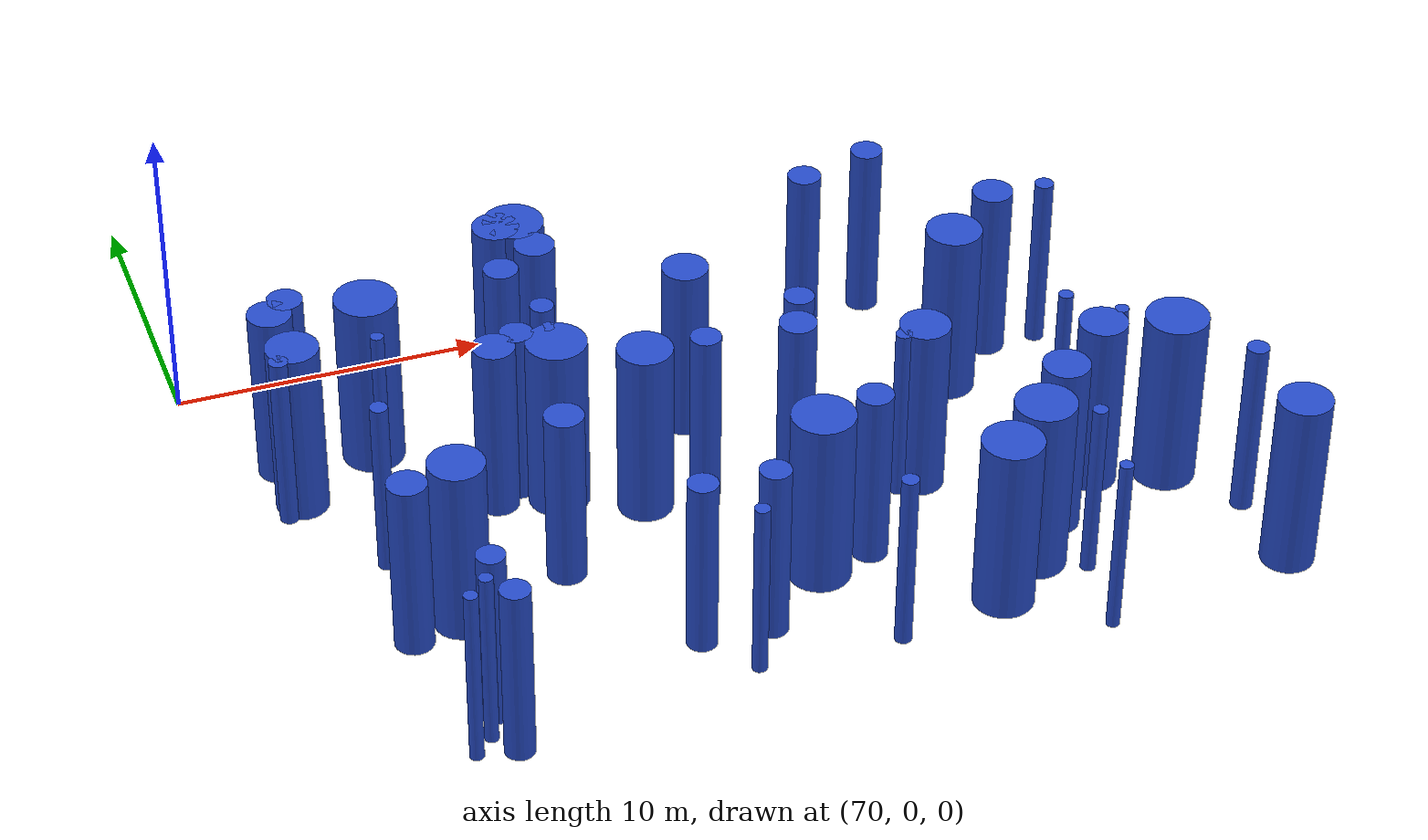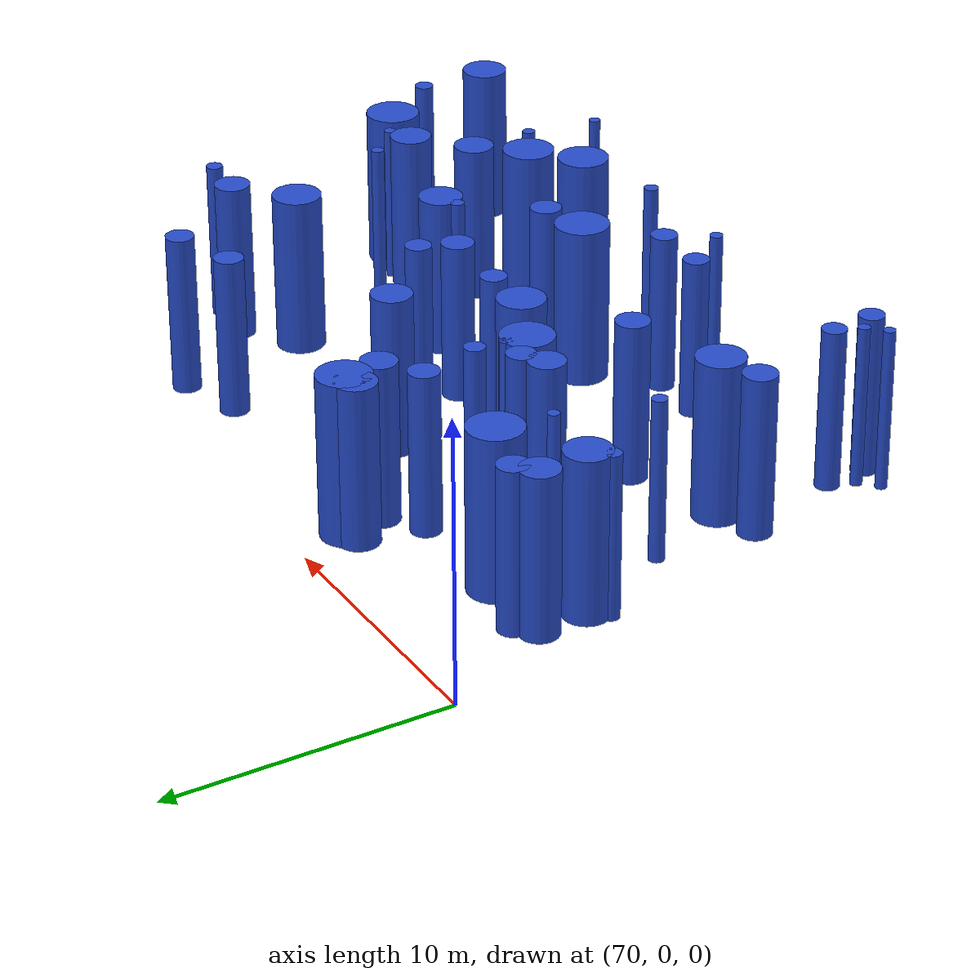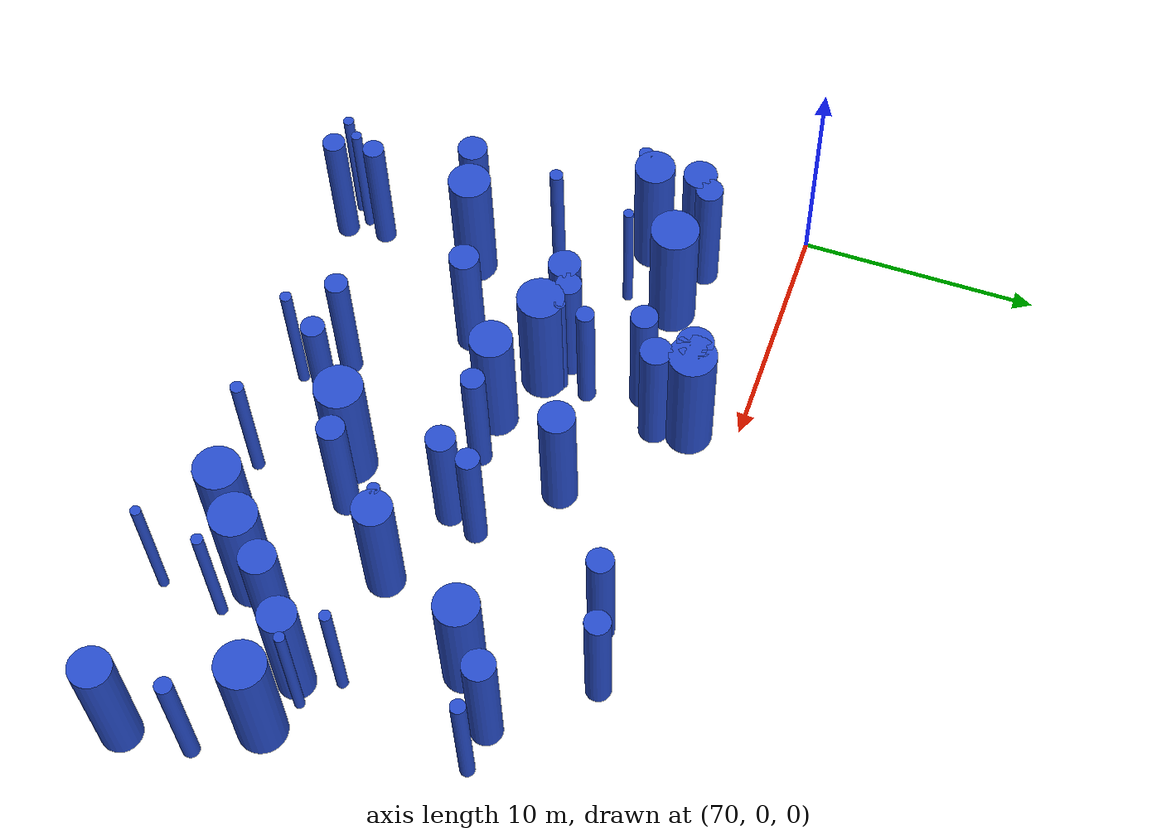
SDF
<sdf version="1.7">
 <world name="default">
  <model name="1">
   <static>1</static>
   <link name="link">
    <inertial>
     <mass>2</mass>
     <inertia><ixx>6.13726</ixx><ixy>0</ixy><ixz>0</ixz><iyy>6.13726</iyy><iyz>0</iyz><izz>0.274521</izz></inertia>
    </inertial>
    <collision name="collision">
     <geometry><cylinder><length>6</length><radius>0.523947</radius></cylinder></geometry>
     <surface><contact><collide_without_contact>1</collide_without_contact></contact></surface>
    </collision>
    <visual name="visual">
     <geometry><cylinder><length>6</length><radius>0.523947</radius></cylinder></geometry>
     <material>
      <script><uri>file://media/materials/scripts/gazebo.material</uri><name>Gazebo/Blue</name></script>
     </material>
    </visual>
    <gravity>0</gravity>
   </link>
   <pose>79.0825 -7.66138 3 0 -0 0</pose>
  </model>
  <model name="10">
   <static>1</static>
   <link name="link">
    <inertial>
     <mass>2</mass>
     <inertia><ixx>6.17693</ixx><ixy>0</ixy><ixz>0</ixz><iyy>6.17693</iyy><iyz>0</iyz><izz>0.353861</izz></inertia>
    </inertial>
    <collision name="collision">
     <geometry><cylinder><length>6</length><radius>0.594862</radius></cylinder></geometry>
     <surface><contact><collide_without_contact>1</collide_without_contact></contact></surface>
    </collision>
    <visual name="visual">
     <geometry><cylinder><length>6</length><radius>0.594862</radius></cylinder></geometry>
     <material>
      <script><uri>file://media/materials/scripts/gazebo.material</uri><name>Gazebo/Blue</name></script>
     </material>
    </visual>
    <gravity>0</gravity>
   </link>
   <pose>87.3229 -9.93889 3 0 -0 0</pose>
  </model>
  <model name="12">
   <static>1</static>
   <link name="link">
    <inertial>
     <mass>2</mass>
     <inertia><ixx>6.47437</ixx><ixy>0</ixy><ixz>0</ixz><iyy>6.47437</iyy><iyz>0</iyz><izz>0.948739</izz></inertia>
    </inertial>
    <collision name="collision">
     <geometry><cylinder><length>6</length><radius>0.974032</radius></cylinder></geometry>
     <surface><contact><collide_without_contact>1</collide_without_contact></contact></surface>
    </collision>
    <visual name="visual">
     <geometry><cylinder><length>6</length><radius>0.974032</radius></cylinder></geometry>
     <material>
      <script><uri>file://media/materials/scripts/gazebo.material</uri><name>Gazebo/Blue</name></script>
     </material>
    </visual>
    <gravity>0</gravity>
   </link>
   <pose>80.7273 -1.97986 3 0 -0 0</pose>
  </model>
  <model name="26">
   <static>1</static>
   <link name="link">
    <inertial>
     <mass>2</mass>
     <inertia><ixx>6.07083</ixx><ixy>0</ixy><ixz>0</ixz><iyy>6.07083</iyy><iyz>0</iyz><izz>0.141653</izz></inertia>
    </inertial>
    <collision name="collision">
     <geometry><cylinder><length>6</length><radius>0.376368</radius></cylinder></geometry>
     <surface><contact><collide_without_contact>1</collide_without_contact></contact></surface>
    </collision>
    <visual name="visual">
     <geometry><cylinder><length>6</length><radius>0.376368</radius></cylinder></geometry>
     <material>
      <script><uri>file://media/materials/scripts/gazebo.material</uri><name>Gazebo/Blue</name></script>
     </material>
    </visual>
    <gravity>0</gravity>
   </link>
   <pose>80.2366 -6.5725 3 0 -0 0</pose>
  </model>
  <model name="31">
   <static>1</static>
   <link name="link">
    <inertial>
     <mass>2</mass>
     <inertia>
      <ixx>6.02361</ixx>
      <ixy>0</ixy>
      <ixz>0</ixz>
      <iyy>6.02361</iyy>
      <iyz>0</iyz>
      <izz>0.0472233</izz>
     </inertia>
    </inertial>
    <collision name="collision">
     <geometry><cylinder><length>6</length><radius>0.217309</radius></cylinder></geometry>
     <surface><contact><collide_without_contact>1</collide_without_contact></contact></surface>
    </collision>
    <visual name="visual">
     <geometry><cylinder><length>6</length><radius>0.217309</radius></cylinder></geometry>
     <material>
      <script><uri>file://media/materials/scripts/gazebo.material</uri><name>Gazebo/Blue</name></script>
     </material>
    </visual>
    <gravity>0</gravity>
   </link>
   <pose>96.9028 -12.4642 3 0 -0 0</pose>
  </model>
  <model name="38">
   <static>1</static>
   <link name="link">
    <inertial>
     <mass>2</mass>
     <inertia><ixx>6.27451</ixx><ixy>0</ixy><ixz>0</ixz><iyy>6.27451</iyy><iyz>0</iyz><izz>0.549024</izz></inertia>
    </inertial>
    <collision name="collision">
     <geometry><cylinder><length>6</length><radius>0.740961</radius></cylinder></geometry>
     <surface><contact><collide_without_contact>1</collide_without_contact></contact></surface>
    </collision>
    <visual name="visual">
     <geometry><cylinder><length>6</length><radius>0.740961</radius></cylinder></geometry>
     <material>
      <script><uri>file://media/materials/scripts/gazebo.material</uri><name>Gazebo/Blue</name></script>
     </material>
    </visual>
    <gravity>0</gravity>
   </link>
   <pose>85.0306 -6.07382 3 0 -0 0</pose>
  </model>
  <model name="41">
   <static>1</static>
   <link name="link">
    <inertial>
     <mass>2</mass>
     <inertia><ixx>6.11796</ixx><ixy>0</ixy><ixz>0</ixz><iyy>6.11796</iyy><iyz>0</iyz><izz>0.235925</izz></inertia>
    </inertial>
    <collision name="collision">
     <geometry><cylinder><length>6</length><radius>0.485721</radius></cylinder></geometry>
     <surface><contact><collide_without_contact>1</collide_without_contact></contact></surface>
    </collision>
    <visual name="visual">
     <geometry><cylinder><length>6</length><radius>0.485721</radius></cylinder></geometry>
     <material>
      <script><uri>file://media/materials/scripts/gazebo.material</uri><name>Gazebo/Blue</name></script>
     </material>
    </visual>
    <gravity>0</gravity>
   </link>
   <pose>84.4381 -9.72074 3 0 -0 0</pose>
  </model>
  <model name="42">
   <static>1</static>
   <link name="link">
    <inertial>
     <mass>2</mass>
     <inertia>
      <ixx>6.02204</ixx>
      <ixy>0</ixy>
      <ixz>0</ixz>
      <iyy>6.02204</iyy>
      <iyz>0</iyz>
      <izz>0.0440786</izz>
     </inertia>
    </inertial>
    <collision name="collision">
     <geometry><cylinder><length>6</length><radius>0.209949</radius></cylinder></geometry>
     <surface><contact><collide_without_contact>1</collide_without_contact></contact></surface>
    </collision>
    <visual name="visual">
     <geometry><cylinder><length>6</length><radius>0.209949</radius></cylinder></geometry>
     <material>
      <script><uri>file://media/materials/scripts/gazebo.material</uri><name>Gazebo/Blue</name></script>
     </material>
    </visual>
    <gravity>0</gravity>
   </link>
   <pose>75.056 -6.49444 3 0 -0 0</pose>
  </model>
  <model name="45">
   <static>1</static>
   <link name="link">
    <inertial>
     <mass>2</mass>
     <inertia><ixx>6.24281</ixx><ixy>0</ixy><ixz>0</ixz><iyy>6.24281</iyy><iyz>0</iyz><izz>0.485616</izz></inertia>
    </inertial>
    <collision name="collision">
     <geometry><cylinder><length>6</length><radius>0.696861</radius></cylinder></geometry>
     <surface><contact><collide_without_contact>1</collide_without_contact></contact></surface>
    </collision>
    <visual name="visual">
     <geometry><cylinder><length>6</length><radius>0.696861</radius></cylinder></geometry>
     <material>
      <script><uri>file://media/materials/scripts/gazebo.material</uri><name>Gazebo/Blue</name></script>
     </material>
    </visual>
    <gravity>0</gravity>
   </link>
   <pose>72.2614 -4.32324 3 0 -0 0</pose>
  </model>
  <model name="61">
   <static>1</static>
   <link name="link">
    <inertial>
     <mass>2</mass>
     <inertia><ixx>6.11407</ixx><ixy>0</ixy><ixz>0</ixz><iyy>6.11407</iyy><iyz>0</iyz><izz>0.228142</izz></inertia>
    </inertial>
    <collision name="collision">
     <geometry><cylinder><length>6</length><radius>0.477642</radius></cylinder></geometry>
     <surface><contact><collide_without_contact>1</collide_without_contact></contact></surface>
    </collision>
    <visual name="visual">
     <geometry><cylinder><length>6</length><radius>0.477642</radius></cylinder></geometry>
     <material>
      <script><uri>file://media/materials/scripts/gazebo.material</uri><name>Gazebo/Blue</name></script>
     </material>
    </visual>
    <gravity>0</gravity>
   </link>
   <pose>87.8311 -8.65193 3 0 -0 0</pose>
  </model>
  <model name="63">
   <static>1</static>
   <link name="link">
    <inertial>
     <mass>2</mass>
     <inertia><ixx>6.45196</ixx><ixy>0</ixy><ixz>0</ixz><iyy>6.45196</iyy><iyz>0</iyz><izz>0.903928</izz></inertia>
    </inertial>
    <collision name="collision">
     <geometry><cylinder><length>6</length><radius>0.950751</radius></cylinder></geometry>
     <surface><contact><collide_without_contact>1</collide_without_contact></contact></surface>
    </collision>
    <visual name="visual">
     <geometry><cylinder><length>6</length><radius>0.950751</radius></cylinder></geometry>
     <material>
      <script><uri>file://media/materials/scripts/gazebo.material</uri><name>Gazebo/Blue</name></script>
     </material>
    </visual>
    <gravity>0</gravity>
   </link>
   <pose>91.2058 -17.4489 3 0 -0 0</pose>
  </model>
  <model name="67">
   <static>1</static>
   <link name="link">
    <inertial>
     <mass>2</mass>
     <inertia><ixx>6.34586</ixx><ixy>0</ixy><ixz>0</ixz><iyy>6.34586</iyy><iyz>0</iyz><izz>0.691722</izz></inertia>
    </inertial>
    <collision name="collision">
     <geometry><cylinder><length>6</length><radius>0.831699</radius></cylinder></geometry>
     <surface><contact><collide_without_contact>1</collide_without_contact></contact></surface>
    </collision>
    <visual name="visual">
     <geometry><cylinder><length>6</length><radius>0.831699</radius></cylinder></geometry>
     <material>
      <script><uri>file://media/materials/scripts/gazebo.material</uri><name>Gazebo/Blue</name></script>
     </material>
    </visual>
    <gravity>0</gravity>
   </link>
   <pose>72.4865 -6.20072 3 0 -0 0</pose>
  </model>
  <model name="83">
   <static>1</static>
   <link name="link">
    <inertial>
     <mass>2</mass>
     <inertia><ixx>6.0273</ixx><ixy>0</ixy><ixz>0</ixz><iyy>6.0273</iyy><iyz>0</iyz><izz>0.0546069</izz></inertia>
    </inertial>
    <collision name="collision">
     <geometry><cylinder><length>6</length><radius>0.233681</radius></cylinder></geometry>
     <surface><contact><collide_without_contact>1</collide_without_contact></contact></surface>
    </collision>
    <visual name="visual">
     <geometry><cylinder><length>6</length><radius>0.233681</radius></cylinder></geometry>
     <material>
      <script><uri>file://media/materials/scripts/gazebo.material</uri><name>Gazebo/Blue</name></script>
     </material>
    </visual>
    <gravity>0</gravity>
   </link>
   <pose>95.5868 -11.2314 3 0 -0 0</pose>
  </model>
  <model name="85">
   <static>1</static>
   <link name="link">
    <inertial>
     <mass>2</mass>
     <inertia><ixx>6.49099</ixx><ixy>0</ixy><ixz>0</ixz><iyy>6.49099</iyy><iyz>0</iyz><izz>0.981986</izz></inertia>
    </inertial>
    <collision name="collision">
     <geometry><cylinder><length>6</length><radius>0.990952</radius></cylinder></geometry>
     <surface><contact><collide_without_contact>1</collide_without_contact></contact></surface>
    </collision>
    <visual name="visual">
     <geometry><cylinder><length>6</length><radius>0.990952</radius></cylinder></geometry>
     <material>
      <script><uri>file://media/materials/scripts/gazebo.material</uri><name>Gazebo/Blue</name></script>
     </material>
    </visual>
    <gravity>0</gravity>
   </link>
   <pose>98.3417 -13.3671 3 0 -0 0</pose>
  </model>
  <model name="92">
   <static>1</static>
   <link name="link">
    <inertial>
     <mass>2</mass>
     <inertia>
      <ixx>6.03584</ixx>
      <ixy>0</ixy>
      <ixz>0</ixz>
      <iyy>6.03584</iyy>
      <iyz>0</iyz>
      <izz>0.0716711</izz>
     </inertia>
    </inertial>
    <collision name="collision">
     <geometry><cylinder><length>6</length><radius>0.267715</radius></cylinder></geometry>
     <surface><contact><collide_without_contact>1</collide_without_contact></contact></surface>
    </collision>
    <visual name="visual">
     <geometry><cylinder><length>6</length><radius>0.267715</radius></cylinder></geometry>
     <material>
      <script><uri>file://media/materials/scripts/gazebo.material</uri><name>Gazebo/Blue</name></script>
     </material>
    </visual>
    <gravity>0</gravity>
   </link>
   <pose>87.692 -18.1768 3 0 -0 0</pose>
  </model>
  <model name="97">
   <static>1</static>
   <link name="link">
    <inertial>
     <mass>2</mass>
     <inertia><ixx>6.31806</ixx><ixy>0</ixy><ixz>0</ixz><iyy>6.31806</iyy><iyz>0</iyz><izz>0.636122</izz></inertia>
    </inertial>
    <collision name="collision">
     <geometry><cylinder><length>6</length><radius>0.797572</radius></cylinder></geometry>
     <surface><contact><collide_without_contact>1</collide_without_contact></contact></surface>
    </collision>
    <visual name="visual">
     <geometry><cylinder><length>6</length><radius>0.797572</radius></cylinder></geometry>
     <material>
      <script><uri>file://media/materials/scripts/gazebo.material</uri><name>Gazebo/Blue</name></script>
     </material>
    </visual>
    <gravity>0</gravity>
   </link>
   <pose>90.9308 -11.287 3 0 -0 0</pose>
  </model>
  <model name="114">
   <static>1</static>
   <link name="link">
    <inertial>
     <mass>2</mass>
     <inertia><ixx>6.18924</ixx><ixy>0</ixy><ixz>0</ixz><iyy>6.18924</iyy><iyz>0</iyz><izz>0.378478</izz></inertia>
    </inertial>
    <collision name="collision">
     <geometry><cylinder><length>6</length><radius>0.615206</radius></cylinder></geometry>
     <surface><contact><collide_without_contact>1</collide_without_contact></contact></surface>
    </collision>
    <visual name="visual">
     <geometry><cylinder><length>6</length><radius>0.615206</radius></cylinder></geometry>
     <material>
      <script><uri>file://media/materials/scripts/gazebo.material</uri><name>Gazebo/Blue</name></script>
     </material>
    </visual>
    <gravity>0</gravity>
   </link>
   <pose>79.1976 -12.0524 3 0 -0 0</pose>
  </model>
  <model name="126">
   <static>1</static>
   <link name="link">
    <inertial>
     <mass>2</mass>
     <inertia>
      <ixx>6.03287</ixx>
      <ixy>0</ixy>
      <ixz>0</ixz>
      <iyy>6.03287</iyy>
      <iyz>0</iyz>
      <izz>0.0657482</izz>
     </inertia>
    </inertial>
    <collision name="collision">
     <geometry><cylinder><length>6</length><radius>0.256414</radius></cylinder></geometry>
     <surface><contact><collide_without_contact>1</collide_without_contact></contact></surface>
    </collision>
    <visual name="visual">
     <geometry><cylinder><length>6</length><radius>0.256414</radius></cylinder></geometry>
     <material>
      <script><uri>file://media/materials/scripts/gazebo.material</uri><name>Gazebo/Blue</name></script>
     </material>
    </visual>
    <gravity>0</gravity>
   </link>
   <pose>90.1417 -11.5311 3 0 -0 0</pose>
  </model>
  <model name="127">
   <static>1</static>
   <link name="link">
    <inertial>
     <mass>2</mass>
     <inertia><ixx>6.27307</ixx><ixy>0</ixy><ixz>0</ixz><iyy>6.27307</iyy><iyz>0</iyz><izz>0.546132</izz></inertia>
    </inertial>
    <collision name="collision">
     <geometry><cylinder><length>6</length><radius>0.739007</radius></cylinder></geometry>
     <surface><contact><collide_without_contact>1</collide_without_contact></contact></surface>
    </collision>
    <visual name="visual">
     <geometry><cylinder><length>6</length><radius>0.739007</radius></cylinder></geometry>
     <material>
      <script><uri>file://media/materials/scripts/gazebo.material</uri><name>Gazebo/Blue</name></script>
     </material>
    </visual>
    <gravity>0</gravity>
   </link>
   <pose>94.1785 -14.5155 3 0 -0 0</pose>
  </model>
  <model name="130">
   <static>1</static>
   <link name="link">
    <inertial>
     <mass>2</mass>
     <inertia>
      <ixx>6.04625</ixx>
      <ixy>0</ixy>
      <ixz>0</ixz>
      <iyy>6.04625</iyy>
      <iyz>0</iyz>
      <izz>0.0924927</izz>
     </inertia>
    </inertial>
    <collision name="collision">
     <geometry><cylinder><length>6</length><radius>0.304126</radius></cylinder></geometry>
     <surface><contact><collide_without_contact>1</collide_without_contact></contact></surface>
    </collision>
    <visual name="visual">
     <geometry><cylinder><length>6</length><radius>0.304126</radius></cylinder></geometry>
     <material>
      <script><uri>file://media/materials/scripts/gazebo.material</uri><name>Gazebo/Blue</name></script>
     </material>
    </visual>
    <gravity>0</gravity>
   </link>
   <pose>97.3682 -5.42661 3 0 -0 0</pose>
  </model>
  <model name="132">
   <static>1</static>
   <link name="link">
    <inertial>
     <mass>2</mass>
     <inertia><ixx>6.06029</ixx><ixy>0</ixy><ixz>0</ixz><iyy>6.06029</iyy><iyz>0</iyz><izz>0.120573</izz></inertia>
    </inertial>
    <collision name="collision">
     <geometry><cylinder><length>6</length><radius>0.347236</radius></cylinder></geometry>
     <surface><contact><collide_without_contact>1</collide_without_contact></contact></surface>
    </collision>
    <visual name="visual">
     <geometry><cylinder><length>6</length><radius>0.347236</radius></cylinder></geometry>
     <material>
      <script><uri>file://media/materials/scripts/gazebo.material</uri><name>Gazebo/Blue</name></script>
     </material>
    </visual>
    <gravity>0</gravity>
   </link>
   <pose>99.9528 -15.6208 3 0 -0 0</pose>
  </model>
  <model name="141">
   <static>1</static>
   <link name="link">
    <inertial>
     <mass>2</mass>
     <inertia><ixx>6.46101</ixx><ixy>0</ixy><ixz>0</ixz><iyy>6.46101</iyy><iyz>0</iyz><izz>0.922012</izz></inertia>
    </inertial>
    <collision name="collision">
     <geometry><cylinder><length>6</length><radius>0.960215</radius></cylinder></geometry>
     <surface><contact><collide_without_contact>1</collide_without_contact></contact></surface>
    </collision>
    <visual name="visual">
     <geometry><cylinder><length>6</length><radius>0.960215</radius></cylinder></geometry>
     <material>
      <script><uri>file://media/materials/scripts/gazebo.material</uri><name>Gazebo/Blue</name></script>
     </material>
    </visual>
    <gravity>0</gravity>
   </link>
   <pose>80.0823 -8.49288 3 0 -0 0</pose>
  </model>
  <model name="142">
   <static>1</static>
   <link name="link">
    <inertial>
     <mass>2</mass>
     <inertia><ixx>6.28167</ixx><ixy>0</ixy><ixz>0</ixz><iyy>6.28167</iyy><iyz>0</iyz><izz>0.563341</izz></inertia>
    </inertial>
    <collision name="collision">
     <geometry><cylinder><length>6</length><radius>0.75056</radius></cylinder></geometry>
     <surface><contact><collide_without_contact>1</collide_without_contact></contact></surface>
    </collision>
    <visual name="visual">
     <geometry><cylinder><length>6</length><radius>0.75056</radius></cylinder></geometry>
     <material>
      <script><uri>file://media/materials/scripts/gazebo.material</uri><name>Gazebo/Blue</name></script>
     </material>
    </visual>
    <gravity>0</gravity>
   </link>
   <pose>80.1219 -2.07261 3 0 -0 0</pose>
  </model>
  <model name="153">
   <static>1</static>
   <link name="link">
    <inertial>
     <mass>2</mass>
     <inertia>
      <ixx>6.02607</ixx>
      <ixy>0</ixy>
      <ixz>0</ixz>
      <iyy>6.02607</iyy>
      <iyz>0</iyz>
      <izz>0.0521486</izz>
     </inertia>
    </inertial>
    <collision name="collision">
     <geometry><cylinder><length>6</length><radius>0.228361</radius></cylinder></geometry>
     <surface><contact><collide_without_contact>1</collide_without_contact></contact></surface>
    </collision>
    <visual name="visual">
     <geometry><cylinder><length>6</length><radius>0.228361</radius></cylinder></geometry>
     <material>
      <script><uri>file://media/materials/scripts/gazebo.material</uri><name>Gazebo/Blue</name></script>
     </material>
    </visual>
    <gravity>0</gravity>
   </link>
   <pose>80.0902 -7.68706 3 0 -0 0</pose>
  </model>
  <model name="162">
   <static>1</static>
   <link name="link">
    <inertial>
     <mass>2</mass>
     <inertia><ixx>6.09687</ixx><ixy>0</ixy><ixz>0</ixz><iyy>6.09687</iyy><iyz>0</iyz><izz>0.19373</izz></inertia>
    </inertial>
    <collision name="collision">
     <geometry><cylinder><length>6</length><radius>0.440148</radius></cylinder></geometry>
     <surface><contact><collide_without_contact>1</collide_without_contact></contact></surface>
    </collision>
    <visual name="visual">
     <geometry><cylinder><length>6</length><radius>0.440148</radius></cylinder></geometry>
     <material>
      <script><uri>file://media/materials/scripts/gazebo.material</uri><name>Gazebo/Blue</name></script>
     </material>
    </visual>
    <gravity>0</gravity>
   </link>
   <pose>75.3051 -17.5097 3 0 -0 0</pose>
  </model>
  <model name="169">
   <static>1</static>
   <link name="link">
    <inertial>
     <mass>2</mass>
     <inertia><ixx>6.14438</ixx><ixy>0</ixy><ixz>0</ixz><iyy>6.14438</iyy><iyz>0</iyz><izz>0.288764</izz></inertia>
    </inertial>
    <collision name="collision">
     <geometry><cylinder><length>6</length><radius>0.537368</radius></cylinder></geometry>
     <surface><contact><collide_without_contact>1</collide_without_contact></contact></surface>
    </collision>
    <visual name="visual">
     <geometry><cylinder><length>6</length><radius>0.537368</radius></cylinder></geometry>
     <material>
      <script><uri>file://media/materials/scripts/gazebo.material</uri><name>Gazebo/Blue</name></script>
     </material>
    </visual>
    <gravity>0</gravity>
   </link>
   <pose>90.2932 -2.51962 3 0 -0 0</pose>
  </model>
  <model name="171">
   <static>1</static>
   <link name="link">
    <inertial>
     <mass>2</mass>
     <inertia><ixx>6.15418</ixx><ixy>0</ixy><ixz>0</ixz><iyy>6.15418</iyy><iyz>0</iyz><izz>0.308358</izz></inertia>
    </inertial>
    <collision name="collision">
     <geometry><cylinder><length>6</length><radius>0.555299</radius></cylinder></geometry>
     <surface><contact><collide_without_contact>1</collide_without_contact></contact></surface>
    </collision>
    <visual name="visual">
     <geometry><cylinder><length>6</length><radius>0.555299</radius></cylinder></geometry>
     <material>
      <script><uri>file://media/materials/scripts/gazebo.material</uri><name>Gazebo/Blue</name></script>
     </material>
    </visual>
    <gravity>0</gravity>
   </link>
   <pose>79.6124 -4.32158 3 0 -0 0</pose>
  </model>
  <model name="182">
   <static>1</static>
   <link name="link">
    <inertial>
     <mass>2</mass>
     <inertia><ixx>6.13375</ixx><ixy>0</ixy><ixz>0</ixz><iyy>6.13375</iyy><iyz>0</iyz><izz>0.267508</izz></inertia>
    </inertial>
    <collision name="collision">
     <geometry><cylinder><length>6</length><radius>0.517212</radius></cylinder></geometry>
     <surface><contact><collide_without_contact>1</collide_without_contact></contact></surface>
    </collision>
    <visual name="visual">
     <geometry><cylinder><length>6</length><radius>0.517212</radius></cylinder></geometry>
     <material>
      <script><uri>file://media/materials/scripts/gazebo.material</uri><name>Gazebo/Blue</name></script>
     </material>
    </visual>
    <gravity>0</gravity>
   </link>
   <pose>92.7033 -1.80394 3 0 -0 0</pose>
  </model>
  <model name="188">
   <static>1</static>
   <link name="link">
    <inertial>
     <mass>2</mass>
     <inertia>
      <ixx>6.02775</ixx>
      <ixy>0</ixy>
      <ixz>0</ixz>
      <iyy>6.02775</iyy>
      <iyz>0</iyz>
      <izz>0.0555085</izz>
     </inertia>
    </inertial>
    <collision name="collision">
     <geometry><cylinder><length>6</length><radius>0.235602</radius></cylinder></geometry>
     <surface><contact><collide_without_contact>1</collide_without_contact></contact></surface>
    </collision>
    <visual name="visual">
     <geometry><cylinder><length>6</length><radius>0.235602</radius></cylinder></geometry>
     <material>
      <script><uri>file://media/materials/scripts/gazebo.material</uri><name>Gazebo/Blue</name></script>
     </material>
    </visual>
    <gravity>0</gravity>
   </link>
   <pose>94.2138 -16.905 3 0 -0 0</pose>
  </model>
  <model name="194">
   <static>1</static>
   <link name="link">
    <inertial>
     <mass>2</mass>
     <inertia><ixx>6.40219</ixx><ixy>0</ixy><ixz>0</ixz><iyy>6.40219</iyy><iyz>0</iyz><izz>0.804383</izz></inertia>
    </inertial>
    <collision name="collision">
     <geometry><cylinder><length>6</length><radius>0.896874</radius></cylinder></geometry>
     <surface><contact><collide_without_contact>1</collide_without_contact></contact></surface>
    </collision>
    <visual name="visual">
     <geometry><cylinder><length>6</length><radius>0.896874</radius></cylinder></geometry>
     <material>
      <script><uri>file://media/materials/scripts/gazebo.material</uri><name>Gazebo/Blue</name></script>
     </material>
    </visual>
    <gravity>0</gravity>
   </link>
   <pose>93.6668 -6.89252 3 0 -0 0</pose>
  </model>
  <model name="198">
   <static>1</static>
   <link name="link">
    <inertial>
     <mass>2</mass>
     <inertia>
      <ixx>6.03895</ixx>
      <ixy>0</ixy>
      <ixz>0</ixz>
      <iyy>6.03895</iyy>
      <iyz>0</iyz>
      <izz>0.0779083</izz>
     </inertia>
    </inertial>
    <collision name="collision">
     <geometry><cylinder><length>6</length><radius>0.279121</radius></cylinder></geometry>
     <surface><contact><collide_without_contact>1</collide_without_contact></contact></surface>
    </collision>
    <visual name="visual">
     <geometry><cylinder><length>6</length><radius>0.279121</radius></cylinder></geometry>
     <material>
      <script><uri>file://media/materials/scripts/gazebo.material</uri><name>Gazebo/Blue</name></script>
     </material>
    </visual>
    <gravity>0</gravity>
   </link>
   <pose>74.1585 -9.90881 3 0 -0 0</pose>
  </model>
  <model name="223">
   <static>1</static>
   <link name="link">
    <inertial>
     <mass>2</mass>
     <inertia><ixx>6.48949</ixx><ixy>0</ixy><ixz>0</ixz><iyy>6.48949</iyy><iyz>0</iyz><izz>0.978985</izz></inertia>
    </inertial>
    <collision name="collision">
     <geometry><cylinder><length>6</length><radius>0.989437</radius></cylinder></geometry>
     <surface><contact><collide_without_contact>1</collide_without_contact></contact></surface>
    </collision>
    <visual name="visual">
     <geometry><cylinder><length>6</length><radius>0.989437</radius></cylinder></geometry>
     <material>
      <script><uri>file://media/materials/scripts/gazebo.material</uri><name>Gazebo/Blue</name></script>
     </material>
    </visual>
    <gravity>0</gravity>
   </link>
   <pose>75.2415 -4.46108 3 0 -0 0</pose>
  </model>
  <model name="227">
   <static>1</static>
   <link name="link">
    <inertial>
     <mass>2</mass>
     <inertia><ixx>6.18675</ixx><ixy>0</ixy><ixz>0</ixz><iyy>6.18675</iyy><iyz>0</iyz><izz>0.373501</izz></inertia>
    </inertial>
    <collision name="collision">
     <geometry><cylinder><length>6</length><radius>0.611148</radius></cylinder></geometry>
     <surface><contact><collide_without_contact>1</collide_without_contact></contact></surface>
    </collision>
    <visual name="visual">
     <geometry><cylinder><length>6</length><radius>0.611148</radius></cylinder></geometry>
     <material>
      <script><uri>file://media/materials/scripts/gazebo.material</uri><name>Gazebo/Blue</name></script>
     </material>
    </visual>
    <gravity>0</gravity>
   </link>
   <pose>73.9594 -13.6432 3 0 -0 0</pose>
  </model>
  <model name="228">
   <static>1</static>
   <link name="link">
    <inertial>
     <mass>2</mass>
     <inertia><ixx>6.38029</ixx><ixy>0</ixy><ixz>0</ixz><iyy>6.38029</iyy><iyz>0</iyz><izz>0.760575</izz></inertia>
    </inertial>
    <collision name="collision">
     <geometry><cylinder><length>6</length><radius>0.872109</radius></cylinder></geometry>
     <surface><contact><collide_without_contact>1</collide_without_contact></contact></surface>
    </collision>
    <visual name="visual">
     <geometry><cylinder><length>6</length><radius>0.872109</radius></cylinder></geometry>
     <material>
      <script><uri>file://media/materials/scripts/gazebo.material</uri><name>Gazebo/Blue</name></script>
     </material>
    </visual>
    <gravity>0</gravity>
   </link>
   <pose>82.5066 -9.68658 3 0 -0 0</pose>
  </model>
  <model name="238">
   <static>1</static>
   <link name="link">
    <inertial>
     <mass>2</mass>
     <inertia><ixx>6.15946</ixx><ixy>0</ixy><ixz>0</ixz><iyy>6.15946</iyy><iyz>0</iyz><izz>0.318925</izz></inertia>
    </inertial>
    <collision name="collision">
     <geometry><cylinder><length>6</length><radius>0.564734</radius></cylinder></geometry>
     <surface><contact><collide_without_contact>1</collide_without_contact></contact></surface>
    </collision>
    <visual name="visual">
     <geometry><cylinder><length>6</length><radius>0.564734</radius></cylinder></geometry>
     <material>
      <script><uri>file://media/materials/scripts/gazebo.material</uri><name>Gazebo/Blue</name></script>
     </material>
    </visual>
    <gravity>0</gravity>
   </link>
   <pose>72.8887 -3.74017 3 0 -0 0</pose>
  </model>
  <model name="239">
   <static>1</static>
   <link name="link">
    <inertial>
     <mass>2</mass>
     <inertia>
      <ixx>6.02345</ixx>
      <ixy>0</ixy>
      <ixz>0</ixz>
      <iyy>6.02345</iyy>
      <iyz>0</iyz>
      <izz>0.0468926</izz>
     </inertia>
    </inertial>
    <collision name="collision">
     <geometry><cylinder><length>6</length><radius>0.216547</radius></cylinder></geometry>
     <surface><contact><collide_without_contact>1</collide_without_contact></contact></surface>
    </collision>
    <visual name="visual">
     <geometry><cylinder><length>6</length><radius>0.216547</radius></cylinder></geometry>
     <material>
      <script><uri>file://media/materials/scripts/gazebo.material</uri><name>Gazebo/Blue</name></script>
     </material>
    </visual>
    <gravity>0</gravity>
   </link>
   <pose>74.8919 -18.4274 3 0 -0 0</pose>
  </model>
  <model name="240">
   <static>1</static>
   <link name="link">
    <inertial>
     <mass>2</mass>
     <inertia><ixx>6.22151</ixx><ixy>0</ixy><ixz>0</ixz><iyy>6.22151</iyy><iyz>0</iyz><izz>0.443027</izz></inertia>
    </inertial>
    <collision name="collision">
     <geometry><cylinder><length>6</length><radius>0.665603</radius></cylinder></geometry>
     <surface><contact><collide_without_contact>1</collide_without_contact></contact></surface>
    </collision>
    <visual name="visual">
     <geometry><cylinder><length>6</length><radius>0.665603</radius></cylinder></geometry>
     <material>
      <script><uri>file://media/materials/scripts/gazebo.material</uri><name>Gazebo/Blue</name></script>
     </material>
    </visual>
    <gravity>0</gravity>
   </link>
   <pose>78.2245 -8.12905 3 0 -0 0</pose>
  </model>
  <model name="245">
   <static>1</static>
   <link name="link">
    <inertial>
     <mass>2</mass>
     <inertia><ixx>6.10789</ixx><ixy>0</ixy><ixz>0</ixz><iyy>6.10789</iyy><iyz>0</iyz><izz>0.215785</izz></inertia>
    </inertial>
    <collision name="collision">
     <geometry><cylinder><length>6</length><radius>0.464527</radius></cylinder></geometry>
     <surface><contact><collide_without_contact>1</collide_without_contact></contact></surface>
    </collision>
    <visual name="visual">
     <geometry><cylinder><length>6</length><radius>0.464527</radius></cylinder></geometry>
     <material>
      <script><uri>file://media/materials/scripts/gazebo.material</uri><name>Gazebo/Blue</name></script>
     </material>
    </visual>
    <gravity>0</gravity>
   </link>
   <pose>75.5096 -19.1802 3 0 -0 0</pose>
  </model>
  <model name="246">
   <static>1</static>
   <link name="link">
    <inertial>
     <mass>2</mass>
     <inertia><ixx>6.21248</ixx><ixy>0</ixy><ixz>0</ixz><iyy>6.21248</iyy><iyz>0</iyz><izz>0.424968</izz></inertia>
    </inertial>
    <collision name="collision">
     <geometry><cylinder><length>6</length><radius>0.651895</radius></cylinder></geometry>
     <surface><contact><collide_without_contact>1</collide_without_contact></contact></surface>
    </collision>
    <visual name="visual">
     <geometry><cylinder><length>6</length><radius>0.651895</radius></cylinder></geometry>
     <material>
      <script><uri>file://media/materials/scripts/gazebo.material</uri><name>Gazebo/Blue</name></script>
     </material>
    </visual>
    <gravity>0</gravity>
   </link>
   <pose>95.641 -5.29391 3 0 -0 0</pose>
  </model>
  <model name="257">
   <static>1</static>
   <link name="link">
    <inertial>
     <mass>2</mass>
     <inertia><ixx>6.38351</ixx><ixy>0</ixy><ixz>0</ixz><iyy>6.38351</iyy><iyz>0</iyz><izz>0.767014</izz></inertia>
    </inertial>
    <collision name="collision">
     <geometry><cylinder><length>6</length><radius>0.875793</radius></cylinder></geometry>
     <surface><contact><collide_without_contact>1</collide_without_contact></contact></surface>
    </collision>
    <visual name="visual">
     <geometry><cylinder><length>6</length><radius>0.875793</radius></cylinder></geometry>
     <material>
      <script><uri>file://media/materials/scripts/gazebo.material</uri><name>Gazebo/Blue</name></script>
     </material>
    </visual>
    <gravity>0</gravity>
   </link>
   <pose>75.5673 -13.183 3 0 -0 0</pose>
  </model>
  <model name="263">
   <static>1</static>
   <link name="link">
    <inertial>
     <mass>2</mass>
     <inertia><ixx>6.45693</ixx><ixy>0</ixy><ixz>0</ixz><iyy>6.45693</iyy><iyz>0</iyz><izz>0.913852</izz></inertia>
    </inertial>
    <collision name="collision">
     <geometry><cylinder><length>6</length><radius>0.955956</radius></cylinder></geometry>
     <surface><contact><collide_without_contact>1</collide_without_contact></contact></surface>
    </collision>
    <visual name="visual">
     <geometry><cylinder><length>6</length><radius>0.955956</radius></cylinder></geometry>
     <material>
      <script><uri>file://media/materials/scripts/gazebo.material</uri><name>Gazebo/Blue</name></script>
     </material>
    </visual>
    <gravity>0</gravity>
   </link>
   <pose>92.8342 -16.076 3 0 -0 0</pose>
  </model>
  <model name="265">
   <static>1</static>
   <link name="link">
    <inertial>
     <mass>2</mass>
     <inertia><ixx>6.29184</ixx><ixy>0</ixy><ixz>0</ixz><iyy>6.29184</iyy><iyz>0</iyz><izz>0.583686</izz></inertia>
    </inertial>
    <collision name="collision">
     <geometry><cylinder><length>6</length><radius>0.763994</radius></cylinder></geometry>
     <surface><contact><collide_without_contact>1</collide_without_contact></contact></surface>
    </collision>
    <visual name="visual">
     <geometry><cylinder><length>6</length><radius>0.763994</radius></cylinder></geometry>
     <material>
      <script><uri>file://media/materials/scripts/gazebo.material</uri><name>Gazebo/Blue</name></script>
     </material>
    </visual>
    <gravity>0</gravity>
   </link>
   <pose>96.1006 -12.9079 3 0 -0 0</pose>
  </model>
  <model name="271">
   <static>1</static>
   <link name="link">
    <inertial>
     <mass>2</mass>
     <inertia>
      <ixx>6.04544</ixx>
      <ixy>0</ixy>
      <ixz>0</ixz>
      <iyy>6.04544</iyy>
      <iyz>0</iyz>
      <izz>0.0908726</izz>
     </inertia>
    </inertial>
    <collision name="collision">
     <geometry><cylinder><length>6</length><radius>0.301451</radius></cylinder></geometry>
     <surface><contact><collide_without_contact>1</collide_without_contact></contact></surface>
    </collision>
    <visual name="visual">
     <geometry><cylinder><length>6</length><radius>0.301451</radius></cylinder></geometry>
     <material>
      <script><uri>file://media/materials/scripts/gazebo.material</uri><name>Gazebo/Blue</name></script>
     </material>
    </visual>
    <gravity>0</gravity>
   </link>
   <pose>71.9219 -6.77174 3 0 -0 0</pose>
  </model>
  <model name="279">
   <static>1</static>
   <link name="link">
    <inertial>
     <mass>2</mass>
     <inertia><ixx>6.02817</ixx><ixy>0</ixy><ixz>0</ixz><iyy>6.02817</iyy><iyz>0</iyz><izz>0.056345</izz></inertia>
    </inertial>
    <collision name="collision">
     <geometry><cylinder><length>6</length><radius>0.237371</radius></cylinder></geometry>
     <surface><contact><collide_without_contact>1</collide_without_contact></contact></surface>
    </collision>
    <visual name="visual">
     <geometry><cylinder><length>6</length><radius>0.237371</radius></cylinder></geometry>
     <material>
      <script><uri>file://media/materials/scripts/gazebo.material</uri><name>Gazebo/Blue</name></script>
     </material>
    </visual>
    <gravity>0</gravity>
   </link>
   <pose>83.2223 -18.0444 3 0 -0 0</pose>
  </model>
  <model name="289">
   <static>1</static>
   <link name="link">
    <inertial>
     <mass>2</mass>
     <inertia><ixx>6.11267</ixx><ixy>0</ixy><ixz>0</ixz><iyy>6.11267</iyy><iyz>0</iyz><izz>0.225346</izz></inertia>
    </inertial>
    <collision name="collision">
     <geometry><cylinder><length>6</length><radius>0.474706</radius></cylinder></geometry>
     <surface><contact><collide_without_contact>1</collide_without_contact></contact></surface>
    </collision>
    <visual name="visual">
     <geometry><cylinder><length>6</length><radius>0.474706</radius></cylinder></geometry>
     <material>
      <script><uri>file://media/materials/scripts/gazebo.material</uri><name>Gazebo/Blue</name></script>
     </material>
    </visual>
    <gravity>0</gravity>
   </link>
   <pose>81.9991 -16.4018 3 0 -0 0</pose>
  </model>
  <model name="291">
   <static>1</static>
   <link name="link">
    <inertial>
     <mass>2</mass>
     <inertia><ixx>6.48985</ixx><ixy>0</ixy><ixz>0</ixz><iyy>6.48985</iyy><iyz>0</iyz><izz>0.979699</izz></inertia>
    </inertial>
    <collision name="collision">
     <geometry><cylinder><length>6</length><radius>0.989797</radius></cylinder></geometry>
     <surface><contact><collide_without_contact>1</collide_without_contact></contact></surface>
    </collision>
    <visual name="visual">
     <geometry><cylinder><length>6</length><radius>0.989797</radius></cylinder></geometry>
     <material>
      <script><uri>file://media/materials/scripts/gazebo.material</uri><name>Gazebo/Blue</name></script>
     </material>
    </visual>
    <gravity>0</gravity>
   </link>
   <pose>86.4305 -14.4916 3 0 -0 0</pose>
  </model>
  <model name="292">
   <static>1</static>
   <link name="link">
    <inertial>
     <mass>2</mass>
     <inertia><ixx>6.0238</ixx><ixy>0</ixy><ixz>0</ixz><iyy>6.0238</iyy><iyz>0</iyz><izz>0.0476027</izz></inertia>
    </inertial>
    <collision name="collision">
     <geometry><cylinder><length>6</length><radius>0.21818</radius></cylinder></geometry>
     <surface><contact><collide_without_contact>1</collide_without_contact></contact></surface>
    </collision>
    <visual name="visual">
     <geometry><cylinder><length>6</length><radius>0.21818</radius></cylinder></geometry>
     <material>
      <script><uri>file://media/materials/scripts/gazebo.material</uri><name>Gazebo/Blue</name></script>
     </material>
    </visual>
    <gravity>0</gravity>
   </link>
   <pose>74.2733 -19.0222 3 0 -0 0</pose>
  </model>
  <model name="295">
   <static>1</static>
   <link name="link">
    <inertial>
     <mass>2</mass>
     <inertia><ixx>6.11825</ixx><ixy>0</ixy><ixz>0</ixz><iyy>6.11825</iyy><iyz>0</iyz><izz>0.236494</izz></inertia>
    </inertial>
    <collision name="collision">
     <geometry><cylinder><length>6</length><radius>0.486307</radius></cylinder></geometry>
     <surface><contact><collide_without_contact>1</collide_without_contact></contact></surface>
    </collision>
    <visual name="visual">
     <geometry><cylinder><length>6</length><radius>0.486307</radius></cylinder></geometry>
     <material>
      <script><uri>file://media/materials/scripts/gazebo.material</uri><name>Gazebo/Blue</name></script>
     </material>
    </visual>
    <gravity>0</gravity>
   </link>
   <pose>84.1932 -16.4921 3 0 -0 0</pose>
  </model>
  <model name="297">
   <static>1</static>
   <link name="link">
    <inertial>
     <mass>2</mass>
     <inertia><ixx>6.21137</ixx><ixy>0</ixy><ixz>0</ixz><iyy>6.21137</iyy><iyz>0</iyz><izz>0.422745</izz></inertia>
    </inertial>
    <collision name="collision">
     <geometry><cylinder><length>6</length><radius>0.650189</radius></cylinder></geometry>
     <surface><contact><collide_without_contact>1</collide_without_contact></contact></surface>
    </collision>
    <visual name="visual">
     <geometry><cylinder><length>6</length><radius>0.650189</radius></cylinder></geometry>
     <material>
      <script><uri>file://media/materials/scripts/gazebo.material</uri><name>Gazebo/Blue</name></script>
     </material>
    </visual>
    <gravity>0</gravity>
   </link>
   <pose>80.9815 -3.39679 3 0 -0 0</pose>
  </model>
  <model name="311">
   <static>1</static>
   <link name="link">
    <inertial>
     <mass>2</mass>
     <inertia><ixx>6.16263</ixx><ixy>0</ixy><ixz>0</ixz><iyy>6.16263</iyy><iyz>0</iyz><izz>0.325264</izz></inertia>
    </inertial>
    <collision name="collision">
     <geometry><cylinder><length>6</length><radius>0.570319</radius></cylinder></geometry>
     <surface><contact><collide_without_contact>1</collide_without_contact></contact></surface>
    </collision>
    <visual name="visual">
     <geometry><cylinder><length>6</length><radius>0.570319</radius></cylinder></geometry>
     <material>
      <script><uri>file://media/materials/scripts/gazebo.material</uri><name>Gazebo/Blue</name></script>
     </material>
    </visual>
    <gravity>0</gravity>
   </link>
   <pose>88.2217 -14.0672 3 0 -0 0</pose>
  </model>
  <model name="312">
   <static>1</static>
   <link name="link">
    <inertial>
     <mass>2</mass>
     <inertia>
      <ixx>6.02221</ixx>
      <ixy>0</ixy>
      <ixz>0</ixz>
      <iyy>6.02221</iyy>
      <iyz>0</iyz>
      <izz>0.0444257</izz>
     </inertia>
    </inertial>
    <collision name="collision">
     <geometry><cylinder><length>6</length><radius>0.210774</radius></cylinder></geometry>
     <surface><contact><collide_without_contact>1</collide_without_contact></contact></surface>
    </collision>
    <visual name="visual">
     <geometry><cylinder><length>6</length><radius>0.210774</radius></cylinder></geometry>
     <material>
      <script><uri>file://media/materials/scripts/gazebo.material</uri><name>Gazebo/Blue</name></script>
     </material>
    </visual>
    <gravity>0</gravity>
   </link>
   <pose>93.8487 -19.5661 3 0 -0 0</pose>
  </model>
  <model name="313">
   <static>1</static>
   <link name="link">
    <inertial>
     <mass>2</mass>
     <inertia><ixx>6.35387</ixx><ixy>0</ixy><ixz>0</ixz><iyy>6.35387</iyy><iyz>0</iyz><izz>0.707733</izz></inertia>
    </inertial>
    <collision name="collision">
     <geometry><cylinder><length>6</length><radius>0.841269</radius></cylinder></geometry>
     <surface><contact><collide_without_contact>1</collide_without_contact></contact></surface>
    </collision>
    <visual name="visual">
     <geometry><cylinder><length>6</length><radius>0.841269</radius></cylinder></geometry>
     <material>
      <script><uri>file://media/materials/scripts/gazebo.material</uri><name>Gazebo/Blue</name></script>
     </material>
    </visual>
    <gravity>0</gravity>
   </link>
   <pose>100.147 -18.4112 3 0 -0 0</pose>
  </model>
 </world>
</sdf>
